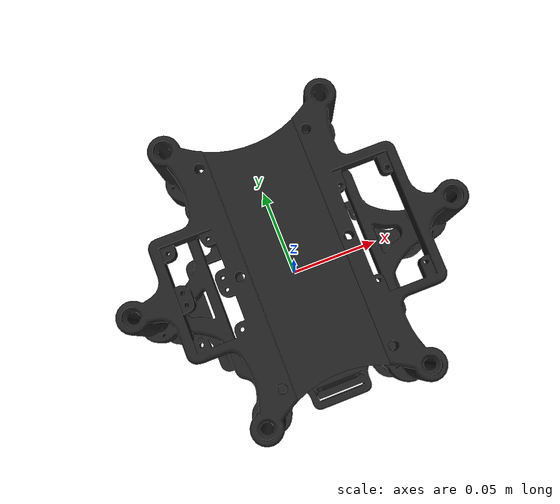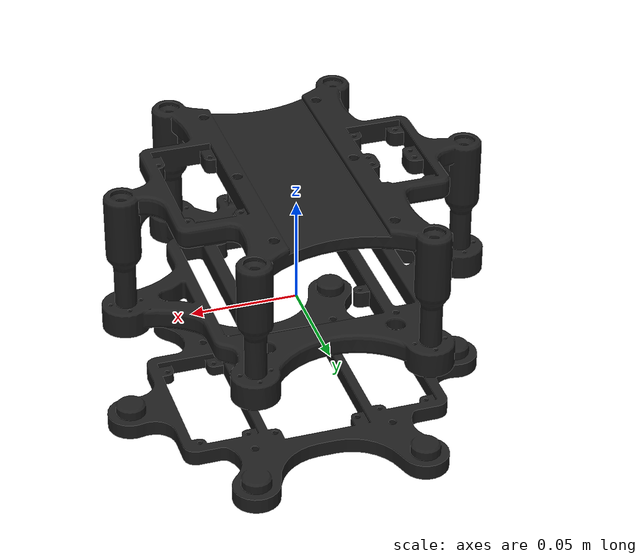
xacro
<?xml version="1.0"?>
<robot xmlns:xacro="http://www.ros.org/wiki/xacro">

    <link name="base_link">
        <visual>
            <geometry>
                <mesh filename="package://hexer_description/mesh/base/base_robot.stl" scale="0.001 0.001 0.001"/>
            </geometry>
            <origin xyz="0 0 -0.061" rpy="0 0 0" />
            <material name="black" />
        </visual>
        <collision>
            <geometry>
                <box size="0.14 0.16 0.012" />
            </geometry>
            <origin xyz="0 0 0.011" rpy="0 0 0" />
        </collision>
        <xacro:main_body_inertia m="0.094" xyz="0 0 0" rpy="0 0 0" />
    </link>
    <link name="base_down_link">
        <visual>
            <geometry>
                <mesh filename="package://hexer_description/mesh/base/base_robot_down.stl" scale="0.001 0.001 0.001"/>
            </geometry>
            <origin xyz="0 -0.0017 -0.068" rpy="0 0 0" />
            <material name="black" />
        </visual>
        <collision>
            <geometry>
                <box size="0.14 0.16 0.012" />
            </geometry>
            <origin xyz="0 0 0.011" rpy="0 0 0" />
        </collision>
        <xacro:main_body_down_inertia m="0.066" xyz="0 0 0" rpy="0 0 0" />
    </link>
    <link name="base_up_link">
        <visual>
            <geometry>
                <mesh filename="package://hexer_description/mesh/base/base_robot_up.stl" scale="0.001 0.001 0.001"/>
            </geometry>
            <origin xyz="0 0.0012 -0.068" rpy="0 0 0" />
            <material name="black" />
        </visual>
        <collision>
            <geometry>
                <box size="0.14 0.16 0.012" />
            </geometry>
            <origin xyz="0 0 0.031" rpy="0 0 0" />
        </collision>
        <xacro:main_body_up_inertia m="0.135" xyz="0 0 0" rpy="0 0 0" />
    </link>

    <joint name="down_base_link" type="fixed">
        <parent link="base_link" />
        <child link="base_down_link" />
        <origin xyz="0 0 -0.063" rpy="0 0 0" />
    </joint>
    <joint name="up_base_link" type="fixed">
        <parent link="base_link" />
        <child link="base_up_link" />
        <origin xyz="0 0 0.031" rpy="0 0 0" />
    </joint>

</robot>
